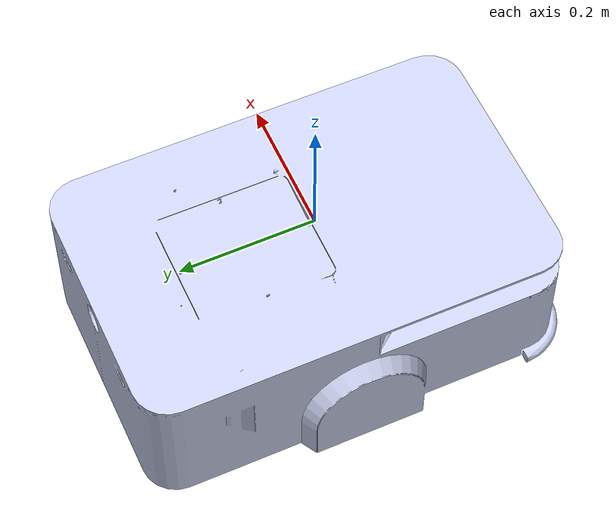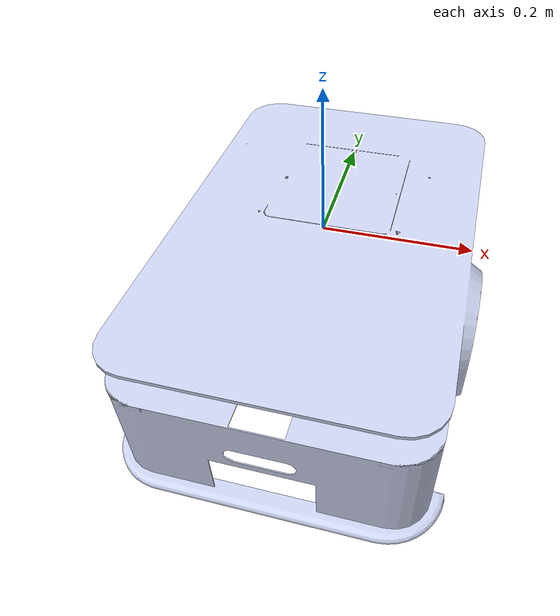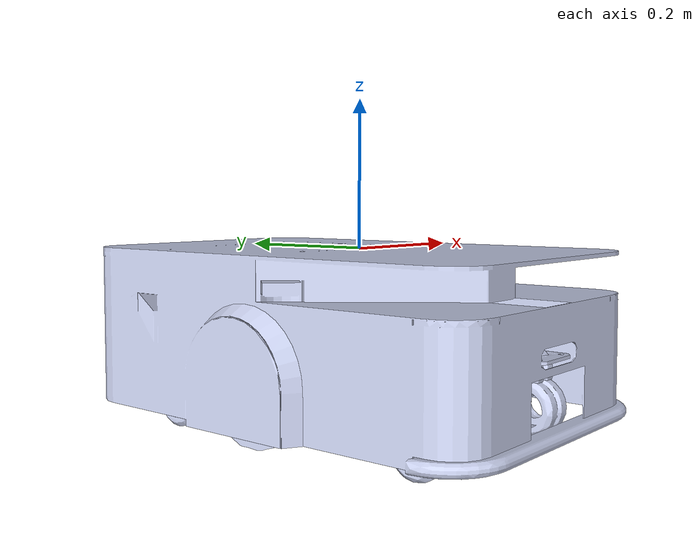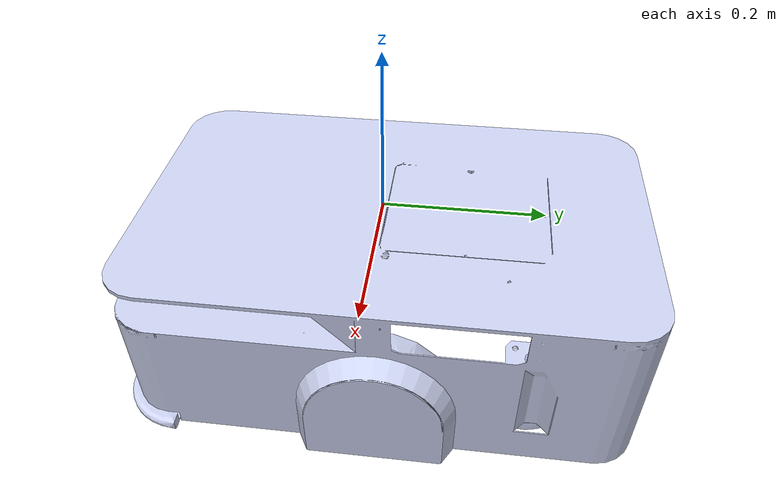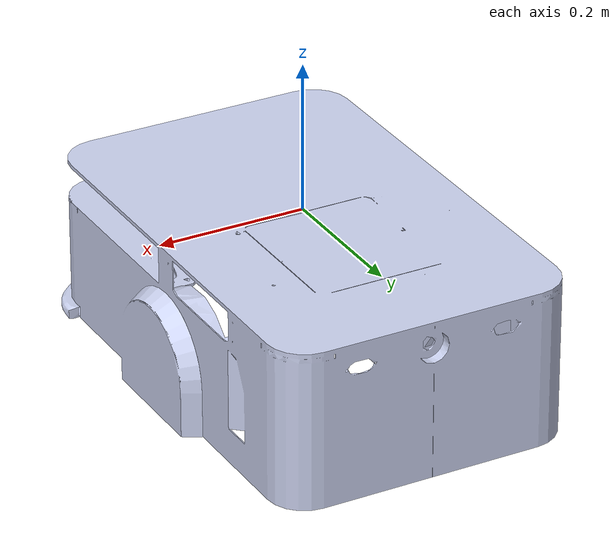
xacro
<?xml version="1.0"?>
<robot name="woosh_agv" xmlns:xacro="http://www.ros.org/wiki/xacro">
  <!-- Define constants -->
  <xacro:property name="mesh_path" value="file://$(find dual_rm_75b_description)/meshes/" />
  <!-- Macro for visual and collision elements -->
  <xacro:macro name="visual_collision" params="mesh">
    <visual>
      <origin xyz="0 0 0" rpy="0 0 0" />
      <geometry>
        <mesh filename="${mesh_path}${mesh}" />
      </geometry>
      <material name="">
        <color rgba="0.79216 0.81961 0.93333 1" />
      </material>
    </visual>
    <collision>
      <origin xyz="0 0 0" rpy="0 0 0" />
      <geometry>
        <mesh filename="${mesh_path}${mesh}" />
      </geometry>
    </collision>
  </xacro:macro>
  <link
    name="base_link_underpan">
    <inertial>
      <origin
        xyz="-0.012628 -0.016092 -0.060646"
        rpy="0 0 0" />
      <mass
        value="2.5521" />
      <inertia
        ixx="0.066197"
        ixy="7.0297E-05"
        ixz="0.00017628"
        iyy="0.034903"
        iyz="-0.00059595"
        izz="0.097938" />
    </inertial>
    <xacro:visual_collision mesh="base_link_underpan.STL" />
  </link>
  <!-- Drive wheels: mesh for visual, CYLINDER for collision (reliable rolling contact in Gz Sim) -->
  <!-- Wheel geometry: radius=0.08m, width≈0.05m, axis along X -->
  <link
    name="link_right_wheel">
    <inertial>
      <origin
        xyz="-0.024898 2.5665E-18 0"
        rpy="0 0 0" />
      <mass
        value="1.0523" />
      <inertia
        ixx="0.0033125"
        ixy="1.5953E-19"
        ixz="1.2287E-20"
        iyy="0.0018066"
        iyz="2.5666E-19"
        izz="0.0018066" />
    </inertial>
    <visual>
      <origin xyz="0 0 0" rpy="0 0 0" />
      <geometry>
        <mesh filename="${mesh_path}link_right_wheel.STL" />
      </geometry>
      <material name="">
        <color rgba="0.79216 0.81961 0.93333 1" />
      </material>
    </visual>
    <collision>
      <!-- Cylinder along X axis: rotate 90° around Y -->
      <origin xyz="-0.025 0 0" rpy="0 ${pi/2} 0" />
      <geometry>
        <cylinder radius="0.08" length="0.05" />
      </geometry>
    </collision>
  </link>
  <link
    name="link_left_wheel">
    <inertial>
      <origin
        xyz="0.025224 -8.8034E-15 0"
        rpy="0 0 0" />
      <mass
        value="1.0734" />
      <inertia
        ixx="0.0033996"
        ixy="-5.0277E-16"
        ixz="9.2981E-21"
        iyy="0.0019593"
        iyz="3.7534E-19"
        izz="0.0019593" />
    </inertial>
    <visual>
      <origin xyz="0 0 0" rpy="0 0 0" />
      <geometry>
        <mesh filename="${mesh_path}link_left_wheel.STL" />
      </geometry>
      <material name="">
        <color rgba="0.79216 0.81961 0.93333 1" />
      </material>
    </visual>
    <collision>
      <!-- Cylinder along X axis: rotate 90° around Y -->
      <origin xyz="0.025 0 0" rpy="0 ${pi/2} 0" />
      <geometry>
        <cylinder radius="0.08" length="0.05" />
      </geometry>
    </collision>
  </link>
  <link
    name="link_swivel_wheel_1_1">
    <inertial>
      <origin
        xyz="0.00067987 -0.0050012 -0.013414"
        rpy="0 0 0" />
      <mass
        value="0.088835" />
      <inertia
        ixx="3.1679E-05"
        ixy="2.0129E-08"
        ixz="2.7021E-08"
        iyy="3.9438E-05"
        iyz="-3.2776E-06"
        izz="4.6143E-05" />
    </inertial>
    <xacro:visual_collision mesh="link_swivel_wheel_1_1.STL" />
  </link>
  <link
    name="link_swivel_wheel_1_2">
    <inertial>
      <origin
        xyz="0.0010651 2.2204E-16 9.4369E-16"
        rpy="0 0 0" />
      <mass
        value="0.12664" />
      <inertia
        ixx="0.00011169"
        ixy="1.1345E-14"
        ixz="2.2064E-14"
        iyy="6.0838E-05"
        iyz="1.7051E-09"
        izz="6.084E-05" />
    </inertial>
    <xacro:visual_collision mesh="link_swivel_wheel_1_2.STL" />
  </link>
  <link
    name="link_swivel_wheel_2_1">
    <inertial>
      <origin
        xyz="0.00067987 -0.0050012 -0.013414"
        rpy="0 0 0" />
      <mass
        value="0.088835" />
      <inertia
        ixx="3.1679E-05"
        ixy="2.0129E-08"
        ixz="2.7021E-08"
        iyy="3.9438E-05"
        iyz="-3.2776E-06"
        izz="4.6143E-05" />
    </inertial>
    <xacro:visual_collision mesh="link_swivel_wheel_2_1.STL" />
  </link>
  <link
    name="link_swivel_wheel_2_2">
    <inertial>
      <origin
        xyz="0.0010651 6.1062E-16 7.7716E-16"
        rpy="0 0 0" />
      <mass
        value="0.12664" />
      <inertia
        ixx="0.00011169"
        ixy="1.9869E-14"
        ixz="1.4856E-14"
        iyy="6.084E-05"
        iyz="2.0109E-09"
        izz="6.0838E-05" />
    </inertial>
    <xacro:visual_collision mesh="link_swivel_wheel_2_2.STL" />
  </link>
  <link
    name="link_swivel_wheel_3_1">
    <inertial>
      <origin
        xyz="0.00067987 -0.0050012 -0.013414"
        rpy="0 0 0" />
      <mass
        value="0.088835" />
      <inertia
        ixx="3.1679E-05"
        ixy="2.0129E-08"
        ixz="2.7021E-08"
        iyy="3.9438E-05"
        iyz="-3.2776E-06"
        izz="4.6143E-05" />
    </inertial>
    <xacro:visual_collision mesh="link_swivel_wheel_3_1.STL" />
  </link>
   <link
    name="link_swivel_wheel_3_2">
    <inertial>
      <origin
        xyz="0.0010651 -3.3307E-16 8.8818E-16"
        rpy="0 0 0" />
      <mass
        value="0.12664" />
      <inertia
        ixx="0.00011169"
        ixy="-1.8513E-15"
        ixz="2.474E-14"
        iyy="6.0837E-05"
        iyz="-3.1204E-10"
        izz="6.0841E-05" />
    </inertial>
    <xacro:visual_collision mesh="link_swivel_wheel_3_2.STL" />
  </link>
  <link
    name="link_swivel_wheel_4_1">
    <inertial>
      <origin
        xyz="0.00067987 -0.0050012 -0.0094542"
        rpy="0 0 0" />
      <mass
        value="0.088835" />
      <inertia
        ixx="3.1679E-05"
        ixy="2.0129E-08"
        ixz="2.7021E-08"
        iyy="3.9438E-05"
        iyz="-3.2776E-06"
        izz="4.6143E-05" />
    </inertial>
    <xacro:visual_collision mesh="link_swivel_wheel_4_1.STL" />
  </link>
  <link
    name="link_swivel_wheel_4_2">
    <inertial>
      <origin
        xyz="0.0010651 -4.996E-16 7.494E-16"
        rpy="0 0 0" />
      <mass
        value="0.12664" />
      <inertia
        ixx="0.00011169"
        ixy="-7.4776E-15"
        ixz="2.3656E-14"
        iyy="6.0837E-05"
        iyz="-1.205E-09"
        izz="6.0841E-05" />
    </inertial>
    <xacro:visual_collision mesh="link_swivel_wheel_4_2.STL" />
  </link>

  <joint
    name="joint_right_wheel"
    type="continuous">
    <origin
      xyz="-0.148 0.015574 -0.153"
      rpy="0 0 0" />
    <parent
      link="base_link_underpan" />
    <child
      link="link_right_wheel" />
    <axis
      xyz="1 0 0" />
    <limit
      effort="100"
      velocity="10" />
  </joint>
  <joint
    name="joint_left_wheel"
    type="continuous">
    <origin
      xyz="0.148 0.015574 -0.153"
      rpy="0 0 0" />
    <parent
      link="base_link_underpan" />
    <child
      link="link_left_wheel" />
    <axis
      xyz="1 0 0" />
    <limit
      effort="100"
      velocity="10" />
  </joint>
  <joint
    name="joint_swivel_wheel_1_1"
    type="continuous">
    <origin
      xyz="0.124 -0.17843 -0.16254"
      rpy="0 0 0" />
    <parent
      link="base_link_underpan" />
    <child
      link="link_swivel_wheel_1_1" />
    <axis
      xyz="0 0 1" />
  </joint>
  <joint
    name="joint_swivel_wheel_1_2"
    type="continuous">
    <origin
      xyz="-0.0035 -0.022 -0.04516"
      rpy="0 0 0" />
    <parent
      link="link_swivel_wheel_1_1" />
    <child
      link="link_swivel_wheel_1_2" />
    <axis
      xyz="1 0 0" />
  </joint>
  <joint
    name="joint_swivel_wheel_2_1"
    type="continuous">
    <origin
      xyz="-0.126 0.22157 -0.16254"
      rpy="0 0 0" />
    <parent
      link="base_link_underpan" />
    <child
      link="link_swivel_wheel_2_1" />
    <axis
      xyz="0 0 1" />
  </joint>
  <joint
    name="joint_swivel_wheel_2_2"
    type="continuous">
    <origin
      xyz="-0.0035 -0.022 -0.04516"
      rpy="0 0 0" />
    <parent
      link="link_swivel_wheel_2_1" />
    <child
      link="link_swivel_wheel_2_2" />
    <axis
      xyz="1 0 0" />
  </joint>
   <joint
    name="joint_swivel_wheel_3_1"
    type="continuous">
    <origin
      xyz="0.124 0.22157 -0.16254"
      rpy="0 0 0" />
    <parent
      link="base_link_underpan" />
    <child
      link="link_swivel_wheel_3_1" />
    <axis
      xyz="0 0 1" />
  </joint>
  <joint
    name="joint_swivel_wheel_3_2"
    type="continuous">
    <origin
      xyz="-0.0035 -0.022 -0.04516"
      rpy="0 0 0" />
    <parent
      link="link_swivel_wheel_3_1" />
    <child
      link="link_swivel_wheel_3_2" />
    <axis
      xyz="1 0 0" />
  </joint>
  <joint
    name="joint_swivel_wheel_4_1"
    type="continuous">
    <origin
      xyz="-0.126 -0.17843 -0.1665"
      rpy="0 0 0" />
    <parent
      link="base_link_underpan" />
    <child
      link="link_swivel_wheel_4_1" />
    <axis
      xyz="0 0 1" />
  </joint>
  <joint
    name="joint_swivel_wheel_4_2"
    type="continuous">
    <origin
      xyz="-0.0035 -0.022 -0.0412"
      rpy="0 0 0" />
    <parent
      link="link_swivel_wheel_4_1" />
    <child
      link="link_swivel_wheel_4_2" />
    <axis
      xyz="1 0 0" />
  </joint>
</robot>
